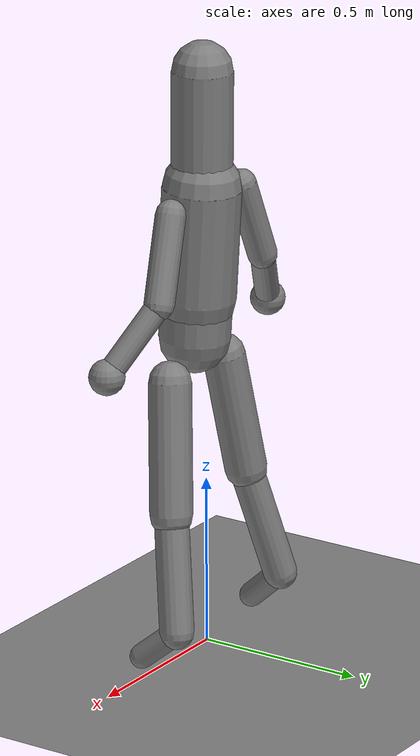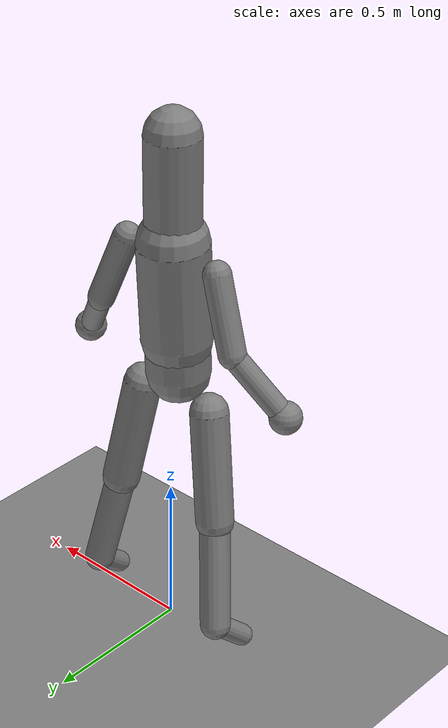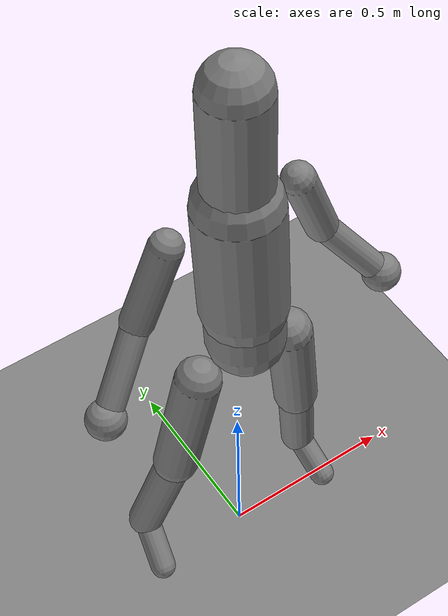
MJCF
<mujoco>
  <worldbody>
    <geom density="0" type="plane" size="20 20 1" pos="0 0 0" quat="-1 0 0 0" priority="0" contype="1" conaffinity="1" group="0" condim="3" solmix="1" solref="0.02 1" solimp="0.9 0.95 0.001" margin="0" gap="0" friction="1 0.05 0.05" fluidshape="none" fluidcoef="5 0.25 1.5 1 1" name="floor_0" />
    <body pos="0.00363 -0.03662 0.92056" quat="-1 0 0 0" gravcomp="0" name="Pelvis_1">
      <freejoint name="root_2" />
      <geom mass="10.9274" type="capsule" size="0.103 0.06000069" pos="0 0.003474999 0.05989999" quat="0.02897011 0.9995803 0 0" priority="0" contype="1" conaffinity="1" group="0" condim="3" solmix="1" solref="0.02 1" solimp="0.9 0.95 0.001" margin="0" gap="0" friction="1 0.05 0.05" fluidshape="none" fluidcoef="5 0.25 1.5 1 1" name="g_Pelvis_3" />
      <body pos="0 0.00695 0.1198" quat="-1 0 0 0" gravcomp="0" name="Torso_4">
        <joint type="hinge" pos="0 0 0" axis="1 0 0" ref="0" armature="0.2" springref="0" springdamper="0 0" damping="2" stiffness="0" solreflimit="0.02 1" solimplimit="0.9 0.95 0.001 0.5 2" solreffriction="0.02 1" solimpfriction="0.9 0.95 0.001 0.5 2" frictionloss="0" limited="true" margin="0" range="-27.90001 32.10002" name="Torso_pitch_7" />
        <joint type="hinge" pos="0 0 0" axis="-1.192093E-07 1 0" ref="0" armature="0.2" springref="0" springdamper="0 0" damping="2" stiffness="0" solreflimit="0.02 1" solimplimit="0.9 0.95 0.001 0.5 2" solreffriction="0.02 1" solimpfriction="0.9 0.95 0.001 0.5 2" frictionloss="0" limited="true" margin="0" range="-22.40001 17.6" name="Torso_roll_8" />
        <joint type="hinge" pos="0 0 0" axis="1 0 0" ref="0" armature="0.2" springref="0" springdamper="0 0" damping="2" stiffness="0" solreflimit="0.02 1" solimplimit="0.9 0.95 0.001 0.5 2" solreffriction="0.02 1" solimpfriction="0.9 0.95 0.001 0.5 2" frictionloss="0" limited="true" margin="0" range="-34.99998 34.99998" name="Torso_yaw_9" />
        <geom mass="25.7576" type="capsule" size="0.1133 0.1630931" pos="0 0.009439999 0.1628201" quat="0.0289526 0.9995809 0 0" priority="0" contype="1" conaffinity="1" group="0" condim="3" solmix="1" solref="0.02 1" solimp="0.9 0.95 0.001" margin="0" gap="0" friction="1 0.05 0.05" fluidshape="none" fluidcoef="5 0.25 1.5 1 1" name="g_Torso_10" />
        <body pos="0 0.01888 0.32564" quat="-1 0 0 0" gravcomp="0" name="Head_11">
          <joint type="hinge" pos="0 0 0" axis="1 0 0" ref="0" armature="0.2" springref="0" springdamper="0 0" damping="2" stiffness="0" solreflimit="0.02 1" solimplimit="0.9 0.95 0.001 0.5 2" solreffriction="0.02 1" solimpfriction="0.9 0.95 0.001 0.5 2" frictionloss="0" limited="true" margin="0" range="-37.49997 42.5" name="Head_pitch_24" />
          <joint type="hinge" pos="0 0 0" axis="-1.192093E-07 1 0" ref="0" armature="0.2" springref="0" springdamper="0 0" damping="2" stiffness="0" solreflimit="0.02 1" solimplimit="0.9 0.95 0.001 0.5 2" solreffriction="0.02 1" solimpfriction="0.9 0.95 0.001 0.5 2" frictionloss="0" limited="true" margin="0" range="-34.20002 25.8" name="Head_roll_25" />
          <joint type="hinge" pos="0 0 0" axis="1 0 0" ref="0" armature="0.2" springref="0" springdamper="0 0" damping="2" stiffness="0" solreflimit="0.02 1" solimplimit="0.9 0.95 0.001 0.5 2" solreffriction="0.02 1" solimpfriction="0.9 0.95 0.001 0.5 2" frictionloss="0" limited="true" margin="0" range="-44.99999 44.99999" name="Head_yaw_26" />
          <geom mass="5.4638" type="capsule" size="0.0876 0.1695651" pos="0 0.001305001 0.1695601" quat="0.003848109 0.9999927 0 0" priority="0" contype="1" conaffinity="1" group="0" condim="3" solmix="1" solref="0.02 1" solimp="0.9 0.95 0.001" margin="0" gap="0" friction="1 0.05 0.05" fluidshape="none" fluidcoef="5 0.25 1.5 1 1" name="g_Head_27" />
        </body>
        <body pos="0.17604 0.03235 0.2960701" quat="-1 0 0 0" gravcomp="0" name="UpperArmL_12">
          <joint type="hinge" pos="0 0 0" axis="1 0 0" ref="0" armature="0.2" springref="0" springdamper="0 0" damping="2" stiffness="0" solreflimit="0.02 1" solimplimit="0.9 0.95 0.001 0.5 2" solreffriction="0.02 1" solimpfriction="0.9 0.95 0.001 0.5 2" frictionloss="0" limited="true" margin="0" range="-60.00014 120.0003" name="UpperArmL_pitch_28" />
          <joint type="hinge" pos="0 0 0" axis="-1.192093E-07 1 0" ref="0" armature="0.2" springref="0" springdamper="0 0" damping="2" stiffness="0" solreflimit="0.02 1" solimplimit="0.9 0.95 0.001 0.5 2" solreffriction="0.02 1" solimpfriction="0.9 0.95 0.001 0.5 2" frictionloss="0" limited="true" margin="0" range="-151.4001 20.00001" name="UpperArmL_roll_29" />
          <joint type="hinge" pos="0 0 0" axis="1 0 0" ref="0" armature="0.2" springref="0" springdamper="0 0" damping="2" stiffness="0" solreflimit="0.02 1" solimplimit="0.9 0.95 0.001 0.5 2" solreffriction="0.02 1" solimpfriction="0.9 0.95 0.001 0.5 2" frictionloss="0" limited="true" margin="0" range="-57.90025 62.10003" name="UpperArmL_yaw_30" />
          <geom mass="2.3416" type="capsule" size="0.0433 0.126487" pos="0.04585001 0.01111 -0.1173601" quat="0.9817945 0.04473182 -0.1846041 0" priority="0" contype="1" conaffinity="1" group="0" condim="3" solmix="1" solref="0.02 1" solimp="0.9 0.95 0.001" margin="0" gap="0" friction="1 0.05 0.05" fluidshape="none" fluidcoef="5 0.25 1.5 1 1" name="g_UpperArmL_31" />
          <body pos="0.09170003 0.02222 -0.2347201" quat="-1 0 0 0" gravcomp="0" name="ForearmL_32">
            <joint type="hinge" pos="0 0 0" axis="1 0 0" ref="0" armature="0.2" springref="0" springdamper="0 0" damping="2" stiffness="0" solreflimit="0.02 1" solimplimit="0.9 0.95 0.001 0.5 2" solreffriction="0.02 1" solimpfriction="0.9 0.95 0.001 0.5 2" frictionloss="0" limited="true" margin="0" range="-20.00001 139.9999" name="ForearmL_pitch_44" />
            <geom mass="1.5611" type="capsule" size="0.0361 0.122848" pos="0.067855 -0.04174 -0.09351492" quat="0.93841 -0.181035 -0.294301 0" priority="0" contype="1" conaffinity="1" group="0" condim="3" solmix="1" solref="0.02 1" solimp="0.9 0.95 0.001" margin="0" gap="0" friction="1 0.05 0.05" fluidshape="none" fluidcoef="5 0.25 1.5 1 1" name="g_ForearmL_45" />
            <body pos="0.13571 -0.08348 -0.18703" quat="-1 0 0 0" gravcomp="0" name="GloveL_46">
              <joint type="hinge" pos="0 0 0" axis="1 0 0" ref="0" armature="0.2" springref="0" springdamper="0 0" damping="2" stiffness="0" solreflimit="0.02 1" solimplimit="0.9 0.95 0.001 0.5 2" solreffriction="0.02 1" solimpfriction="0.9 0.95 0.001 0.5 2" frictionloss="0" limited="true" margin="0" range="-60.00014 60.00014" name="GloveL_pitch_56" />
              <joint type="hinge" pos="0 0 0" axis="1 0 0" ref="0" armature="0.2" springref="0" springdamper="0 0" damping="2" stiffness="0" solreflimit="0.02 1" solimplimit="0.9 0.95 0.001 0.5 2" solreffriction="0.02 1" solimpfriction="0.9 0.95 0.001 0.5 2" frictionloss="0" limited="true" margin="0" range="-24.99998 24.99998" name="GloveL_yaw_57" />
              <geom mass="0.7805" type="sphere" size="0.0515" pos="0 0 0" quat="-1 0 0 0" priority="0" contype="1" conaffinity="1" group="0" condim="3" solmix="1" solref="0.02 1" solimp="0.9 0.95 0.001" margin="0" gap="0" friction="1 0.05 0.05" fluidshape="none" fluidcoef="5 0.25 1.5 1 1" name="g_GloveL_58" />
            </body>
          </body>
        </body>
        <body pos="-0.18335 0.03082 0.2924401" quat="-1 0 0 0" gravcomp="0" name="UpperArmR_13">
          <joint type="hinge" pos="0 0 0" axis="1 0 0" ref="0" armature="0.2" springref="0" springdamper="0 0" damping="2" stiffness="0" solreflimit="0.02 1" solimplimit="0.9 0.95 0.001 0.5 2" solreffriction="0.02 1" solimpfriction="0.9 0.95 0.001 0.5 2" frictionloss="0" limited="true" margin="0" range="-60.00014 120.0003" name="UpperArmR_pitch_33" />
          <joint type="hinge" pos="0 0 0" axis="-1.192093E-07 1 0" ref="0" armature="0.2" springref="0" springdamper="0 0" damping="2" stiffness="0" solreflimit="0.02 1" solimplimit="0.9 0.95 0.001 0.5 2" solreffriction="0.02 1" solimpfriction="0.9 0.95 0.001 0.5 2" frictionloss="0" limited="true" margin="0" range="-20.00001 146.9001" name="UpperArmR_roll_34" />
          <joint type="hinge" pos="0 0 0" axis="1 0 0" ref="0" armature="0.2" springref="0" springdamper="0 0" damping="2" stiffness="0" solreflimit="0.02 1" solimplimit="0.9 0.95 0.001 0.5 2" solreffriction="0.02 1" solimpfriction="0.9 0.95 0.001 0.5 2" frictionloss="0" limited="true" margin="0" range="-63.2998 56.70002" name="UpperArmR_yaw_35" />
          <geom mass="2.3416" type="capsule" size="0.0433 0.121014" pos="-0.040355 0.009335 -0.113705" quat="0.9847839 0.0391657 0.169313 0" priority="0" contype="1" conaffinity="1" group="0" condim="3" solmix="1" solref="0.02 1" solimp="0.9 0.95 0.001" margin="0" gap="0" friction="1 0.05 0.05" fluidshape="none" fluidcoef="5 0.25 1.5 1 1" name="g_UpperArmR_36" />
          <body pos="-0.08070998 0.01867 -0.2274101" quat="-1 0 0 0" gravcomp="0" name="ForearmR_37">
            <joint type="hinge" pos="0 0 0" axis="1 0 0" ref="0" armature="0.2" springref="0" springdamper="0 0" damping="2" stiffness="0" solreflimit="0.02 1" solimplimit="0.9 0.95 0.001 0.5 2" solreffriction="0.02 1" solimpfriction="0.9 0.95 0.001 0.5 2" frictionloss="0" limited="true" margin="0" range="-20.00001 139.9999" name="ForearmR_pitch_47" />
            <geom mass="1.5611" type="capsule" size="0.0361 0.124801" pos="-0.07335001 -0.03808 -0.09351492" quat="0.9352303 -0.163128 0.3142191 0" priority="0" contype="1" conaffinity="1" group="0" condim="3" solmix="1" solref="0.02 1" solimp="0.9 0.95 0.001" margin="0" gap="0" friction="1 0.05 0.05" fluidshape="none" fluidcoef="5 0.25 1.5 1 1" name="g_ForearmR_48" />
            <body pos="-0.1467 -0.07616 -0.18703" quat="-1 0 0 0" gravcomp="0" name="GloveR_49">
              <joint type="hinge" pos="0 0 0" axis="1 0 0" ref="0" armature="0.2" springref="0" springdamper="0 0" damping="2" stiffness="0" solreflimit="0.02 1" solimplimit="0.9 0.95 0.001 0.5 2" solreffriction="0.02 1" solimpfriction="0.9 0.95 0.001 0.5 2" frictionloss="0" limited="true" margin="0" range="-60.00014 60.00014" name="GloveR_pitch_59" />
              <joint type="hinge" pos="0 0 0" axis="1 0 0" ref="0" armature="0.2" springref="0" springdamper="0 0" damping="2" stiffness="0" solreflimit="0.02 1" solimplimit="0.9 0.95 0.001 0.5 2" solreffriction="0.02 1" solimpfriction="0.9 0.95 0.001 0.5 2" frictionloss="0" limited="true" margin="0" range="-24.99998 24.99998" name="GloveR_yaw_60" />
              <geom mass="0.7805" type="sphere" size="0.0515" pos="0 0 0" quat="-1 0 0 0" priority="0" contype="1" conaffinity="1" group="0" condim="3" solmix="1" solref="0.02 1" solimp="0.9 0.95 0.001" margin="0" gap="0" friction="1 0.05 0.05" fluidshape="none" fluidcoef="5 0.25 1.5 1 1" name="g_GloveR_61" />
            </body>
          </body>
        </body>
      </body>
      <body pos="0.14135 0.01084 -0.09287" quat="-1 0 0 0" gravcomp="0" name="ThighL_5">
        <joint type="hinge" pos="0 0 0" axis="1 0 0" ref="0" armature="0.2" springref="0" springdamper="0 0" damping="2" stiffness="0" solreflimit="0.02 1" solimplimit="0.9 0.95 0.001 0.5 2" solreffriction="0.02 1" solimpfriction="0.9 0.95 0.001 0.5 2" frictionloss="0" limited="true" margin="0" range="-109.9999 20.00001" name="ThighL_pitch_14" />
        <joint type="hinge" pos="0 0 0" axis="-1.192093E-07 1 0" ref="0" armature="0.2" springref="0" springdamper="0 0" damping="2" stiffness="0" solreflimit="0.02 1" solimplimit="0.9 0.95 0.001 0.5 2" solreffriction="0.02 1" solimpfriction="0.9 0.95 0.001 0.5 2" frictionloss="0" limited="true" margin="0" range="-20.00001 44.99999" name="ThighL_roll_15" />
        <joint type="hinge" pos="0 0 0" axis="1 0 0" ref="0" armature="0.2" springref="0" springdamper="0 0" damping="2" stiffness="0" solreflimit="0.02 1" solimplimit="0.9 0.95 0.001 0.5 2" solreffriction="0.02 1" solimpfriction="0.9 0.95 0.001 0.5 2" frictionloss="0" limited="true" margin="0" range="-30.00002 30.00002" name="ThighL_yaw_16" />
        <geom mass="8.9761" type="capsule" size="0.0618 0.189415" pos="0.0302 0.02169 -0.18573" quat="0.9951242 0.05753571 -0.08010962 0" priority="0" contype="1" conaffinity="1" group="0" condim="3" solmix="1" solref="0.02 1" solimp="0.9 0.95 0.001" margin="0" gap="0" friction="1 0.05 0.05" fluidshape="none" fluidcoef="5 0.25 1.5 1 1" name="g_ThighL_17" />
        <body pos="0.06040001 0.04338 -0.37146" quat="-1 0 0 0" gravcomp="0" name="ShinL_18">
          <joint type="hinge" pos="0 0 0" axis="1 0 0" ref="0" armature="0.2" springref="0" springdamper="0 0" damping="2" stiffness="0" solreflimit="0.02 1" solimplimit="0.9 0.95 0.001 0.5 2" solreffriction="0.02 1" solimpfriction="0.9 0.95 0.001 0.5 2" frictionloss="0" limited="true" margin="0" range="-10 132.4002" name="ShinL_pitch_38" />
          <geom mass="3.9027" type="capsule" size="0.0495 0.167702" pos="0.02749999 0.02717 -0.163185" quat="0.9932442 0.08155801 -0.08254862 0" priority="0" contype="1" conaffinity="1" group="0" condim="3" solmix="1" solref="0.02 1" solimp="0.9 0.95 0.001" margin="0" gap="0" friction="1 0.05 0.05" fluidshape="none" fluidcoef="5 0.25 1.5 1 1" name="g_ShinL_39" />
          <body pos="0.05499999 0.05434 -0.32637" quat="-1 0 0 0" gravcomp="0" name="FootL_40">
            <joint type="hinge" pos="0 0 0" axis="1 0 0" ref="0" armature="0.2" springref="0" springdamper="0 0" damping="2" stiffness="0" solreflimit="0.02 1" solimplimit="0.9 0.95 0.001 0.5 2" solreffriction="0.02 1" solimpfriction="0.9 0.95 0.001 0.5 2" frictionloss="0" limited="true" margin="0" range="-16.30002 48.69998" name="FootL_pitch_50" />
            <joint type="hinge" pos="0 0 0" axis="-1.192093E-07 1 0" ref="0" armature="0.2" springref="0" springdamper="0 0" damping="2" stiffness="0" solreflimit="0.02 1" solimplimit="0.9 0.95 0.001 0.5 2" solreffriction="0.02 1" solimpfriction="0.9 0.95 0.001 0.5 2" frictionloss="0" limited="true" margin="0" range="-42.40002 10" name="FootL_roll_51" />
            <geom mass="1.1708" type="capsule" size="0.0361 0.07140331" pos="0.007960021 -0.05416 -0.04584503" quat="0.9061062 -0.4185541 -0.06151571 0" priority="0" contype="1" conaffinity="1" group="0" condim="3" solmix="1" solref="0.02 1" solimp="0.9 0.95 0.001" margin="0" gap="0" friction="1 0.05 0.05" fluidshape="none" fluidcoef="5 0.25 1.5 1 1" name="g_FootL_52" />
          </body>
        </body>
      </body>
      <body pos="-0.13627 0.008880001 -0.08993" quat="-1 0 0 0" gravcomp="0" name="ThighR_6">
        <joint type="hinge" pos="0 0 0" axis="1 0 0" ref="0" armature="0.2" springref="0" springdamper="0 0" damping="2" stiffness="0" solreflimit="0.02 1" solimplimit="0.9 0.95 0.001 0.5 2" solreffriction="0.02 1" solimpfriction="0.9 0.95 0.001 0.5 2" frictionloss="0" limited="true" margin="0" range="-115.0001 14.99998" name="ThighR_pitch_19" />
        <joint type="hinge" pos="0 0 0" axis="-1.192093E-07 1 0" ref="0" armature="0.2" springref="0" springdamper="0 0" damping="2" stiffness="0" solreflimit="0.02 1" solimplimit="0.9 0.95 0.001 0.5 2" solreffriction="0.02 1" solimpfriction="0.9 0.95 0.001 0.5 2" frictionloss="0" limited="true" margin="0" range="-50.00002 14.99998" name="ThighR_roll_20" />
        <joint type="hinge" pos="0 0 0" axis="1 0 0" ref="0" armature="0.2" springref="0" springdamper="0 0" damping="2" stiffness="0" solreflimit="0.02 1" solimplimit="0.9 0.95 0.001 0.5 2" solreffriction="0.02 1" solimpfriction="0.9 0.95 0.001 0.5 2" frictionloss="0" limited="true" margin="0" range="-30.00002 30.00002" name="ThighR_yaw_21" />
        <geom mass="8.9761" type="capsule" size="0.0618 0.183357" pos="-0.030875 0.017755 -0.179865" quat="0.995227 0.0486486 0.0845973 0" priority="0" contype="1" conaffinity="1" group="0" condim="3" solmix="1" solref="0.02 1" solimp="0.9 0.95 0.001" margin="0" gap="0" friction="1 0.05 0.05" fluidshape="none" fluidcoef="5 0.25 1.5 1 1" name="g_ThighR_22" />
        <body pos="-0.06174999 0.03551 -0.35973" quat="-1 0 0 0" gravcomp="0" name="ShinR_23">
          <joint type="hinge" pos="0 0 0" axis="1 0 0" ref="0" armature="0.2" springref="0" springdamper="0 0" damping="2" stiffness="0" solreflimit="0.02 1" solimplimit="0.9 0.95 0.001 0.5 2" solreffriction="0.02 1" solimpfriction="0.9 0.95 0.001 0.5 2" frictionloss="0" limited="true" margin="0" range="-10 125.3998" name="ShinR_pitch_41" />
          <geom mass="3.9027" type="capsule" size="0.0495 0.17458" pos="-0.03667501 0.035905 -0.166865" quat="0.9888904 0.103988 0.106218 0" priority="0" contype="1" conaffinity="1" group="0" condim="3" solmix="1" solref="0.02 1" solimp="0.9 0.95 0.001" margin="0" gap="0" friction="1 0.05 0.05" fluidshape="none" fluidcoef="5 0.25 1.5 1 1" name="g_ShinR_42" />
          <body pos="-0.07334998 0.07180999 -0.33373" quat="-1 0 0 0" gravcomp="0" name="FootR_43">
            <joint type="hinge" pos="0 0 0" axis="1 0 0" ref="0" armature="0.2" springref="0" springdamper="0 0" damping="2" stiffness="0" solreflimit="0.02 1" solimplimit="0.9 0.95 0.001 0.5 2" solreffriction="0.02 1" solimpfriction="0.9 0.95 0.001 0.5 2" frictionloss="0" limited="true" margin="0" range="-30.00002 34.99998" name="FootR_pitch_53" />
            <joint type="hinge" pos="0 0 0" axis="-1.192093E-07 1 0" ref="0" armature="0.2" springref="0" springdamper="0 0" damping="2" stiffness="0" solreflimit="0.02 1" solimplimit="0.9 0.95 0.001 0.5 2" solreffriction="0.02 1" solimpfriction="0.9 0.95 0.001 0.5 2" frictionloss="0" limited="true" margin="0" range="-10 31.20002" name="FootR_roll_54" />
            <geom mass="1.1708" type="capsule" size="0.0361 0.07558461" pos="-0.008805007 -0.05549499 -0.05055499" quat="0.9134697 -0.4018798 0.06376348 0" priority="0" contype="1" conaffinity="1" group="0" condim="3" solmix="1" solref="0.02 1" solimp="0.9 0.95 0.001" margin="0" gap="0" friction="1 0.05 0.05" fluidshape="none" fluidcoef="5 0.25 1.5 1 1" name="g_FootR_55" />
          </body>
        </body>
      </body>
    </body>
  </worldbody>
  <contact />
  <tendon />
  <equality />
  <actuator>
    <position joint="Torso_pitch_7" ctrllimited="true" forcelimited="true" ctrlrange="-0.487131 0.560067" forcerange="-150 150" lengthrange="0 0" gear="1" kp="400" kv="104.7382" name="a_Torso_pitch_62" />
    <position joint="Torso_roll_8" ctrllimited="true" forcelimited="true" ctrlrange="-0.391811 0.30632" forcerange="-100 100" lengthrange="0 0" gear="1" kp="400" kv="79.9567" name="a_Torso_roll_63" />
    <position joint="Torso_yaw_9" ctrllimited="true" forcelimited="true" ctrlrange="-0.610865 0.610865" forcerange="-60 60" lengthrange="0 0" gear="1" kp="400" kv="122.173" name="a_Torso_yaw_64" />
    <position joint="Head_pitch_24" ctrllimited="true" forcelimited="true" ctrlrange="-0.654985 0.741278" forcerange="-15 15" lengthrange="0 0" gear="1" kp="60" kv="20.95125" name="a_Head_pitch_65" />
    <position joint="Head_roll_25" ctrllimited="true" forcelimited="true" ctrlrange="-0.597032 0.450166" forcerange="-10 10" lengthrange="0 0" gear="1" kp="60" kv="15.7099" name="a_Head_roll_66" />
    <position joint="Head_yaw_26" ctrllimited="true" forcelimited="true" ctrlrange="-0.785398 0.785398" forcerange="-8 8" lengthrange="0 0" gear="1" kp="60" kv="23.56194" name="a_Head_yaw_67" />
    <position joint="ThighL_pitch_14" ctrllimited="true" forcelimited="true" ctrlrange="-1.91986 0.349066" forcerange="-140 200" lengthrange="0 0" gear="1" kp="500" kv="189.0772" name="a_ThighL_pitch_68" />
    <position joint="ThighL_roll_15" ctrllimited="true" forcelimited="true" ctrlrange="-0.349066 0.785398" forcerange="-80 80" lengthrange="0 0" gear="1" kp="500" kv="94.53867" name="a_ThighL_roll_69" />
    <position joint="ThighL_yaw_16" ctrllimited="true" forcelimited="true" ctrlrange="-0.523599 0.523599" forcerange="-40 40" lengthrange="0 0" gear="1" kp="500" kv="87.26651" name="a_ThighL_yaw_70" />
    <position joint="ShinL_pitch_38" ctrllimited="true" forcelimited="true" ctrlrange="-0.174533 2.31157" forcerange="-200 100" lengthrange="0 0" gear="1" kp="400" kv="124.3051" name="a_ShinL_pitch_71" />
    <position joint="FootL_pitch_50" ctrllimited="true" forcelimited="true" ctrlrange="-0.285266 0.849198" forcerange="-45 120" lengthrange="0 0" gear="1" kp="200" kv="37.84137" name="a_FootL_pitch_72" />
    <position joint="FootL_roll_51" ctrllimited="true" forcelimited="true" ctrlrange="-0.739292 0.174533" forcerange="-20 20" lengthrange="0 0" gear="1" kp="200" kv="45.72765" name="a_FootL_roll_73" />
    <position joint="ThighR_pitch_19" ctrllimited="true" forcelimited="true" ctrlrange="-2.00632 0.262606" forcerange="-140 200" lengthrange="0 0" gear="1" kp="500" kv="189.1447" name="a_ThighR_pitch_74" />
    <position joint="ThighR_roll_20" ctrllimited="true" forcelimited="true" ctrlrange="-0.872354 0.26211" forcerange="-80 80" lengthrange="0 0" gear="1" kp="500" kv="94.56458" name="a_ThighR_roll_75" />
    <position joint="ThighR_yaw_21" ctrllimited="true" forcelimited="true" ctrlrange="-0.523599 0.523599" forcerange="-40 40" lengthrange="0 0" gear="1" kp="500" kv="87.26651" name="a_ThighR_yaw_76" />
    <position joint="ShinR_pitch_41" ctrllimited="true" forcelimited="true" ctrlrange="-0.174533 2.18834" forcerange="-200 100" lengthrange="0 0" gear="1" kp="400" kv="118.1586" name="a_ShinR_pitch_77" />
    <position joint="FootR_pitch_53" ctrllimited="true" forcelimited="true" ctrlrange="-0.523851 0.610613" forcerange="-45 120" lengthrange="0 0" gear="1" kp="200" kv="37.82386" name="a_FootR_pitch_78" />
    <position joint="FootR_roll_54" ctrllimited="true" forcelimited="true" ctrlrange="-0.174533 0.54419" forcerange="-20 20" lengthrange="0 0" gear="1" kp="200" kv="35.9538" name="a_FootR_roll_79" />
    <position joint="UpperArmL_pitch_28" ctrllimited="true" forcelimited="true" ctrlrange="-1.0472 2.0944" forcerange="-60 60" lengthrange="0 0" gear="1" kp="100" kv="39.27" name="a_UpperArmL_pitch_80" />
    <position joint="UpperArmL_roll_29" ctrllimited="true" forcelimited="true" ctrlrange="-2.64186 0.349066" forcerange="-60 60" lengthrange="0 0" gear="1" kp="100" kv="37.3937" name="a_UpperArmL_roll_81" />
    <position joint="UpperArmL_yaw_30" ctrllimited="true" forcelimited="true" ctrlrange="-1.01069 1.08371" forcerange="-25 25" lengthrange="0 0" gear="1" kp="100" kv="34.909" name="a_UpperArmL_yaw_82" />
    <position joint="ForearmL_pitch_44" ctrllimited="true" forcelimited="true" ctrlrange="-0.349066 2.44346" forcerange="-40 60" lengthrange="0 0" gear="1" kp="60" kv="20.94394" name="a_ForearmL_pitch_83" />
    <position joint="GloveL_pitch_56" ctrllimited="true" forcelimited="true" ctrlrange="-1.0472 1.0472" forcerange="-10 10" lengthrange="0 0" gear="1" kp="20" kv="6.981333" name="a_GloveL_pitch_84" />
    <position joint="GloveL_yaw_57" ctrllimited="true" forcelimited="true" ctrlrange="-0.436332 0.436332" forcerange="-5 5" lengthrange="0 0" gear="1" kp="20" kv="4.00827" name="a_GloveL_yaw_85" />
    <position joint="UpperArmR_pitch_33" ctrllimited="true" forcelimited="true" ctrlrange="-1.0472 2.0944" forcerange="-60 60" lengthrange="0 0" gear="1" kp="100" kv="39.27" name="a_UpperArmR_pitch_86" />
    <position joint="UpperArmR_roll_34" ctrllimited="true" forcelimited="true" ctrlrange="-0.349066 2.56451" forcerange="-60 60" lengthrange="0 0" gear="1" kp="100" kv="36.4197" name="a_UpperArmR_roll_87" />
    <position joint="UpperArmR_yaw_35" ctrllimited="true" forcelimited="true" ctrlrange="-1.10417 0.990222" forcerange="-25 25" lengthrange="0 0" gear="1" kp="100" kv="34.91687" name="a_UpperArmR_yaw_88" />
    <position joint="ForearmR_pitch_47" ctrllimited="true" forcelimited="true" ctrlrange="-0.349066 2.44346" forcerange="-40 60" lengthrange="0 0" gear="1" kp="60" kv="20.94394" name="a_ForearmR_pitch_89" />
    <position joint="GloveR_pitch_59" ctrllimited="true" forcelimited="true" ctrlrange="-1.0472 1.0472" forcerange="-10 10" lengthrange="0 0" gear="1" kp="20" kv="6.981333" name="a_GloveR_pitch_90" />
    <position joint="GloveR_yaw_60" ctrllimited="true" forcelimited="true" ctrlrange="-0.436332 0.436332" forcerange="-5 5" lengthrange="0 0" gear="1" kp="20" kv="4.00827" name="a_GloveR_yaw_91" />
  </actuator>
  <sensor>
    <framepos objtype="xbody" objname="FootL_40" cutoff="0" name="s_FootL_pos_92" />
    <framepos objtype="xbody" objname="FootR_43" cutoff="0" name="s_FootR_pos_93" />
    <framepos objtype="xbody" objname="Head_11" cutoff="0" name="s_Head_pos_94" />
    <framezaxis objtype="xbody" objname="Pelvis_1" cutoff="0" name="s_Pelvis_up_95" />
    <subtreecom body="Pelvis_1" cutoff="0" name="s_com_96" />
  </sensor>
  <compiler coordinate="local" />
  <option gravity="0 0 -9.81" timestep="0.004999993" />
  <option impratio="1" magnetic="0 0 0" wind="0 0 0" density="0" viscosity="0" o_margin="0" o_solref="0.02 1" o_solimp="0.9 0.95 0.001 0.5 2" integrator="implicitfast" cone="pyramidal" jacobian="auto" solver="Newton" iterations="20" tolerance="1E-08" noslip_iterations="0" noslip_tolerance="1E-06" ccd_iterations="50" ccd_tolerance="1E-06">
    <flag constraint="enable" equality="enable" frictionloss="enable" limit="enable" contact="enable" spring="enable" damper="enable" gravity="enable" clampctrl="enable" warmstart="enable" filterparent="enable" actuation="enable" refsafe="enable" override="disable" energy="disable" fwdinv="disable" multiccd="disable" />
  </option>
  <size memory="-1" />
  <custom />
  <asset />
</mujoco>
